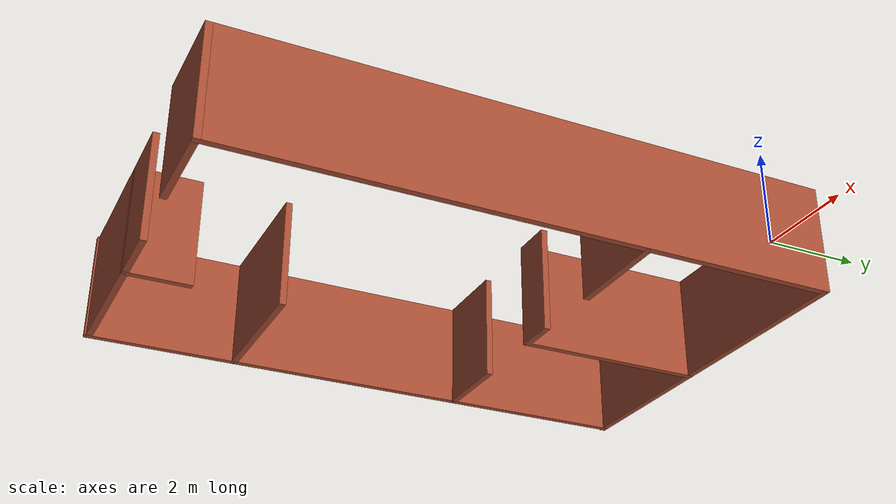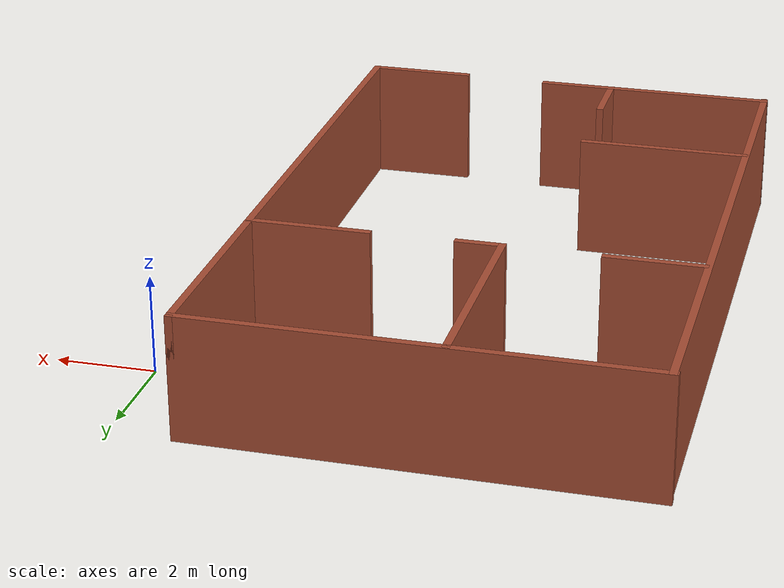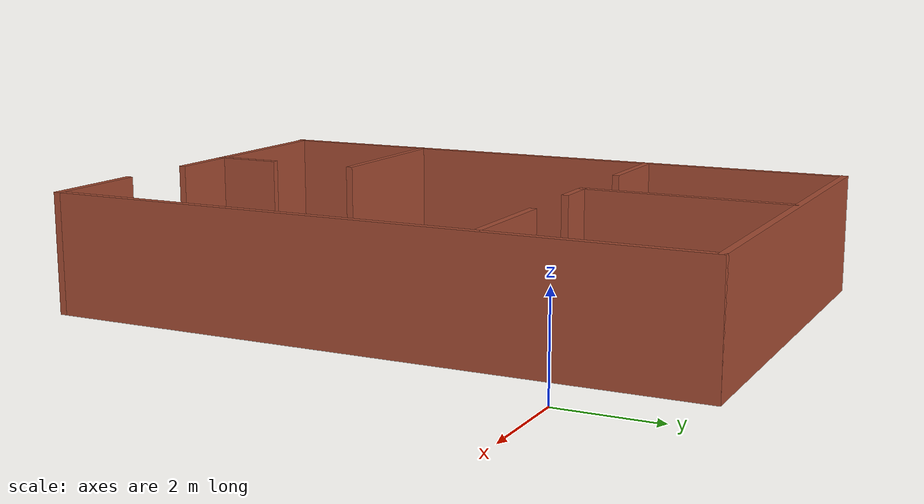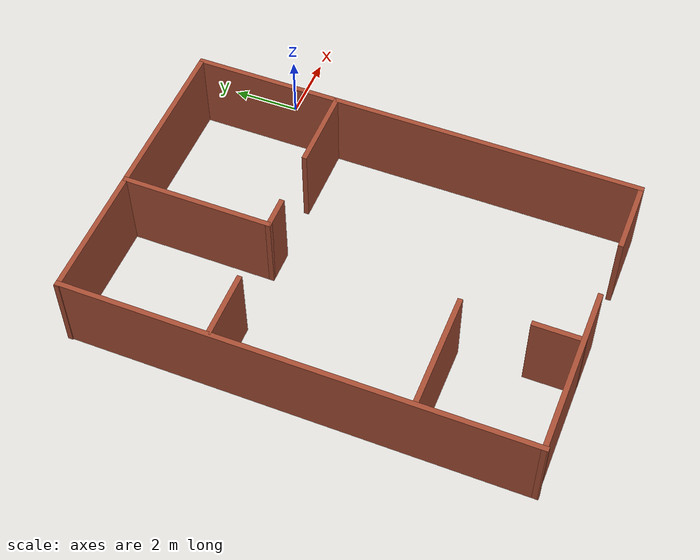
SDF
<?xml version='1.0'?>
<sdf version='1.7'>
  <model name='buiding1'>
    <pose>-5.14937 -4.36208 0 0 -0 0</pose>
    <link name='Wall_10'>
      <collision name='Wall_10_Collision'>
        <geometry>
          <box>
            <size>5.06068 0.15 2.5</size>
          </box>
        </geometry>
        <pose>0 0 1.25 0 -0 0</pose>
      </collision>
      <visual name='Wall_10_Visual'>
        <pose>0 0 1.25 0 -0 0</pose>
        <geometry>
          <box>
            <size>5.06068 0.15 2.5</size>
          </box>
        </geometry>
        <material>
          <script>
            <uri>file://media/materials/scripts/gazebo.material</uri>
            <name>Gazebo/Bricks</name>
          </script>
          <ambient>1 1 1 1</ambient>
        </material>
        <meta>
          <layer>0</layer>
        </meta>
      </visual>
      <pose>-2.59228 -6.6986 0 0 -0 3.14159</pose>
    </link>
    <link name='Wall_11'>
      <collision name='Wall_11_Collision'>
        <geometry>
          <box>
            <size>13.6474 0.15 2.5</size>
          </box>
        </geometry>
        <pose>0 0 1.25 0 -0 0</pose>
      </collision>
      <visual name='Wall_11_Visual'>
        <pose>0 0 1.25 0 -0 0</pose>
        <geometry>
          <box>
            <size>13.6474 0.15 2.5</size>
          </box>
        </geometry>
        <material>
          <script>
            <uri>file://media/materials/scripts/gazebo.material</uri>
            <name>Gazebo/Bricks</name>
          </script>
          <ambient>1 1 1 1</ambient>
        </material>
        <meta>
          <layer>0</layer>
        </meta>
      </visual>
      <pose>-5.04762 0.014734 0 0 -0 1.5708</pose>
    </link>
    <link name='Wall_12'>
      <collision name='Wall_12_Collision'>
        <geometry>
          <box>
            <size>9.06068 0.15 2.5</size>
          </box>
        </geometry>
        <pose>0 0 1.25 0 -0 0</pose>
      </collision>
      <visual name='Wall_12_Visual'>
        <pose>0 0 1.25 0 -0 0</pose>
        <geometry>
          <box>
            <size>9.06068 0.15 2.5</size>
          </box>
        </geometry>
        <material>
          <script>
            <uri>file://media/materials/scripts/gazebo.material</uri>
            <name>Gazebo/Bricks</name>
          </script>
          <ambient>1 1 1 1</ambient>
        </material>
        <meta>
          <layer>0</layer>
        </meta>
      </visual>
      <pose>-0.61903 6.76345 0 0 -0 0</pose>
    </link>
    <link name='Wall_14'>
      <collision name='Wall_14_Collision'>
        <geometry>
          <box>
            <size>13.6769 0.15 2.5</size>
          </box>
        </geometry>
        <pose>0 0 1.25 0 -0 0</pose>
      </collision>
      <visual name='Wall_14_Visual'>
        <pose>0 0 1.25 0 -0 0</pose>
        <geometry>
          <box>
            <size>13.6769 0.15 2.5</size>
          </box>
        </geometry>
        <material>
          <script>
            <uri>file://media/materials/scripts/gazebo.material</uri>
            <name>Gazebo/Bricks</name>
          </script>
          <ambient>1 1 1 1</ambient>
        </material>
        <meta>
          <layer>0</layer>
        </meta>
      </visual>
      <pose>3.83631 -0 0 0 -0 -1.5708</pose>
    </link>
    <link name='Wall_15'>
      <collision name='Wall_15_Collision'>
        <geometry>
          <box>
            <size>2.25 0.15 2.5</size>
          </box>
        </geometry>
        <pose>0 0 1.25 0 -0 0</pose>
      </collision>
      <visual name='Wall_15_Visual'>
        <pose>0 0 1.25 0 -0 0</pose>
        <geometry>
          <box>
            <size>2.25 0.15 2.5</size>
          </box>
        </geometry>
        <material>
          <script>
            <uri>file://media/materials/scripts/gazebo.material</uri>
            <name>Gazebo/Bricks</name>
          </script>
          <ambient>1 1 1 1</ambient>
        </material>
        <meta>
          <layer>0</layer>
        </meta>
      </visual>
      <pose>2.78631 -6.76345 0 0 -0 3.14159</pose>
    </link>
    <link name='Wall_25'>
      <collision name='Wall_25_Collision'>
        <geometry>
          <box>
            <size>2 0.15 2.5</size>
          </box>
        </geometry>
        <pose>0 0 1.25 0 -0 0</pose>
      </collision>
      <visual name='Wall_25_Visual'>
        <pose>0 0 1.25 0 -0 0</pose>
        <geometry>
          <box>
            <size>2 0.15 2.5</size>
          </box>
        </geometry>
        <material>
          <script>
            <uri>file://media/materials/scripts/gazebo.material</uri>
            <name>Gazebo/Bricks</name>
          </script>
          <ambient>1 1 1 1</ambient>
        </material>
        <meta>
          <layer>0</layer>
        </meta>
      </visual>
      <pose>-4.05103 2.38196 0 0 -0 0</pose>
    </link>
    <link name='Wall_27'>
      <collision name='Wall_27_Collision'>
        <geometry>
          <box>
            <size>4.5 0.15 2.5</size>
          </box>
        </geometry>
        <pose>0 0 1.25 0 -0 0</pose>
      </collision>
      <visual name='Wall_27_Visual'>
        <pose>0 0 1.25 0 -0 0</pose>
        <geometry>
          <box>
            <size>4.5 0.15 2.5</size>
          </box>
        </geometry>
        <material>
          <script>
            <uri>file://media/materials/scripts/gazebo.material</uri>
            <name>Gazebo/Bricks</name>
          </script>
          <ambient>1 1 1 1</ambient>
        </material>
        <meta>
          <layer>0</layer>
        </meta>
      </visual>
      <pose>-1.15515 4.55696 0 0 -0 1.5708</pose>
    </link>
    <link name='Wall_29'>
      <collision name='Wall_29_Collision'>
        <geometry>
          <box>
            <size>1 0.15 2.5</size>
          </box>
        </geometry>
        <pose>0 0 1.25 0 -0 0</pose>
      </collision>
      <visual name='Wall_29_Visual'>
        <pose>0 0 1.25 0 -0 0</pose>
        <geometry>
          <box>
            <size>1 0.15 2.5</size>
          </box>
        </geometry>
        <material>
          <script>
            <uri>file://media/materials/scripts/gazebo.material</uri>
            <name>Gazebo/Bricks</name>
          </script>
          <ambient>1 1 1 1</ambient>
        </material>
        <meta>
          <layer>0</layer>
        </meta>
      </visual>
      <pose>-0.730148 2.38196 0 0 -0 0</pose>
    </link>
    <link name='Wall_31'>
      <collision name='Wall_31_Collision'>
        <geometry>
          <box>
            <size>2.5 0.15 2.5</size>
          </box>
        </geometry>
        <pose>0 0 1.25 0 -0 0</pose>
      </collision>
      <visual name='Wall_31_Visual'>
        <pose>0 0 1.25 0 -0 0</pose>
        <geometry>
          <box>
            <size>2.5 0.15 2.5</size>
          </box>
        </geometry>
        <material>
          <script>
            <uri>file://media/materials/scripts/gazebo.material</uri>
            <name>Gazebo/Bricks</name>
          </script>
          <ambient>1 1 1 1</ambient>
        </material>
        <meta>
          <layer>0</layer>
        </meta>
      </visual>
      <pose>2.64802 2.41272 0 0 -0 0</pose>
    </link>
    <link name='Wall_33'>
      <collision name='Wall_33_Collision'>
        <geometry>
          <box>
            <size>3.5 0.15 2.5</size>
          </box>
        </geometry>
        <pose>0 0 1.25 0 -0 0</pose>
      </collision>
      <visual name='Wall_33_Visual'>
        <pose>0 0 1.25 0 -0 0</pose>
        <geometry>
          <box>
            <size>3.5 0.15 2.5</size>
          </box>
        </geometry>
        <material>
          <script>
            <uri>file://media/materials/scripts/gazebo.material</uri>
            <name>Gazebo/Bricks</name>
          </script>
          <ambient>1 1 1 1</ambient>
        </material>
        <meta>
          <layer>0</layer>
        </meta>
      </visual>
      <pose>-3.33641 -3.3166 0 0 -0 0</pose>
    </link>
    <link name='Wall_36'>
      <collision name='Wall_36_Collision'>
        <geometry>
          <box>
            <size>1.5 0.15 2.5</size>
          </box>
        </geometry>
        <pose>0 0 1.25 0 -0 0</pose>
      </collision>
      <visual name='Wall_36_Visual'>
        <pose>0 0 1.25 0 -0 0</pose>
        <geometry>
          <box>
            <size>1.5 0.15 2.5</size>
          </box>
        </geometry>
        <material>
          <script>
            <uri>file://media/materials/scripts/gazebo.material</uri>
            <name>Gazebo/Bricks</name>
          </script>
          <ambient>1 1 1 1</ambient>
        </material>
        <meta>
          <layer>0</layer>
        </meta>
      </visual>
      <pose>-1.62487 -6.02414 0 0 -0 1.5708</pose>
    </link>
    <static>1</static>
  </model>
</sdf>
